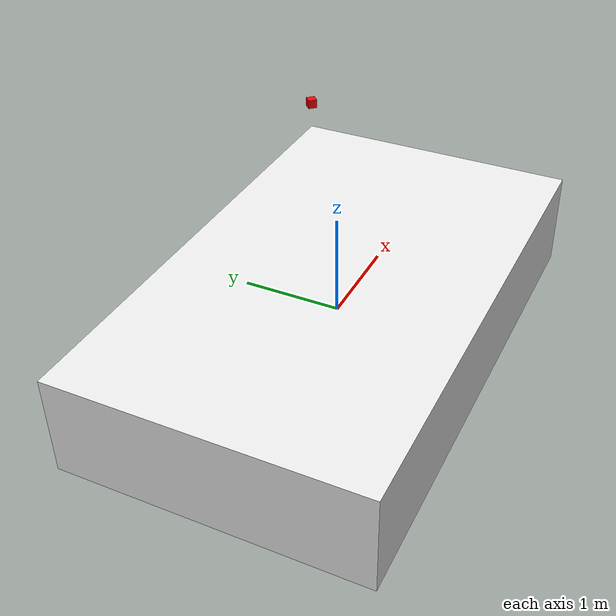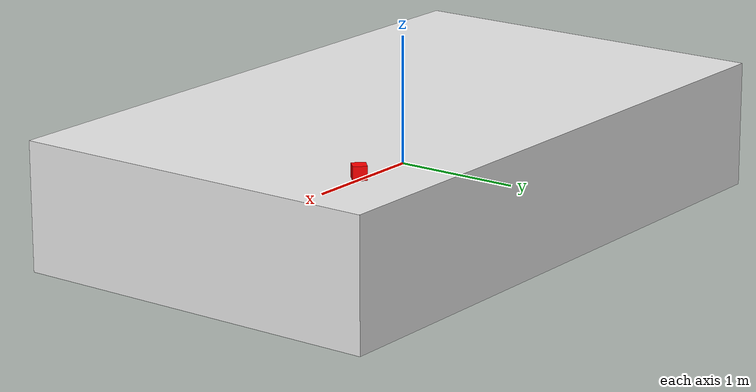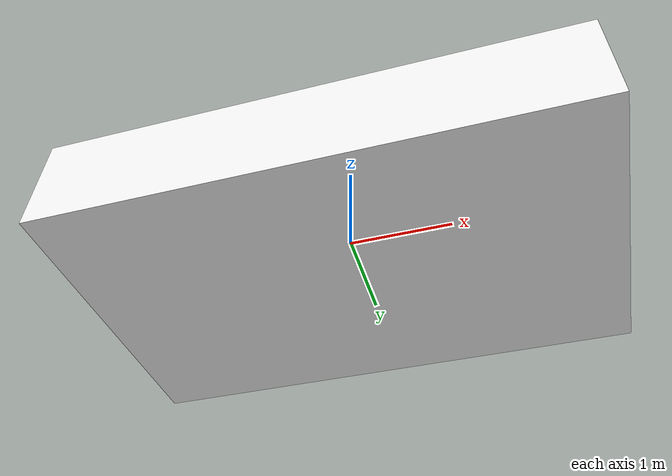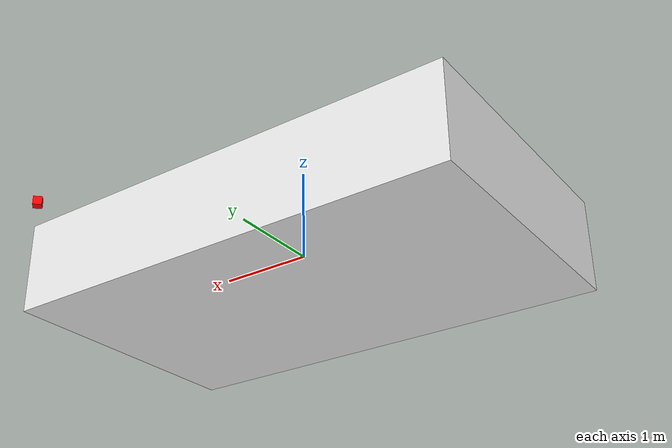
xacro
<?xml version="1.0"?>
<robot name="bot" xmlns:xacro="http://www.ros.org/wiki/xacro" >
   <xacro:include filename="inertial_macros.xacro"/>
   <link name="work_bench" >
        <visual>
            <geometry>
                <box size="5.0 3.0 1.0"/>
            </geometry>
        </visual>
        <collision>
            <geometry>
                <box size="5.0 3.0 1.0"/>
            </geometry>
        </collision>
        <xacro:inertial_box mass="100" x="5.0" y="3.0" z="1">
            <origin xyz="0 0 0" rpy="0 0 0"/>
        </xacro:inertial_box>
    </link>
    <gazebo reference="work_bench">
        <material>Gazebo/White</material>
        <mu1 value="0.1"/>
        <mu2 value="0.1"/>
    </gazebo>

    <joint name="work_bench_camera_joint" type="fixed">
        <parent link="work_bench"/>
        <child link="camera_link"/>
        <origin xyz="2.5 1.5 0.8" rpy="0 0.0 -2.355"/>
    </joint>

    <link name="camera_link">
        <visual>
            <geometry>
                <box size="0.1 0.1 0.1"/>
            </geometry>
            <material name="red">
                <color rgba="1 0 0 1"/>
            </material>
        </visual>
    </link>

    <joint name="camera_optical_joint" type="fixed">
        <parent link="camera_link"/>
        <child link="camera_link_optical"/>
        <origin xyz="0 0 0" rpy="1.57 0 -1.57"/>
    </joint>

    <link name="camera_link_optical"></link>

    <gazebo reference="camera_link">
        <material>Gazebo/Red</material>

        <sensor name="camera" type="camera">
            <pose> 0 0 0 0 0 0 </pose>
            <visualize>true</visualize>
            <update_rate>30</update_rate>
            <camera>
                <horizontal_fov>1.04</horizontal_fov>
                <image>
                    <format>R8G8B8</format>
                    <width>1980</width>
                    <height>720</height>
                </image>
                <clip>
                    <near>0.05</near>
                    <far>6.0</far>
                </clip>
            </camera>
            <plugin name="camera_controller" filename="libgazebo_ros_camera.so">
                <frame_name>camera_link_optical</frame_name>
            </plugin>
        </sensor>
    </gazebo>

</robot>
